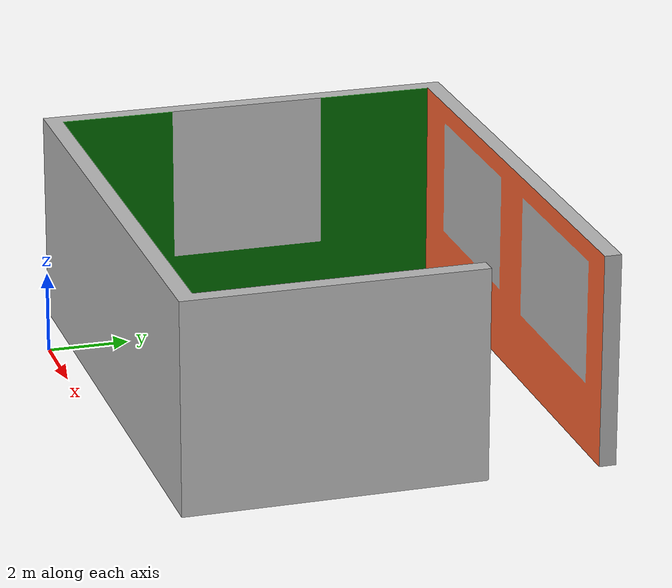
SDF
<?xml version="1.0" ?>
<sdf version="1.5">
  <model name="smartbridge_house_test">
    <pose>0 0 1 0 0 0</pose>
    <static>true</static>
    <link name="link">
      <collision name="collision">
        <geometry>
        <mesh>
            <uri>model://smartbridge_house_test/meshes/smartbridge_house.dae</uri>
          </mesh>
        </geometry>
      </collision>

      <visual name="visual">
        <geometry>
          <mesh>
            <uri>model://smartbridge_house_test/meshes/smartbridge_house.dae</uri>
          </mesh>
        </geometry>
      </visual>
    </link>
  </model>
</sdf>
